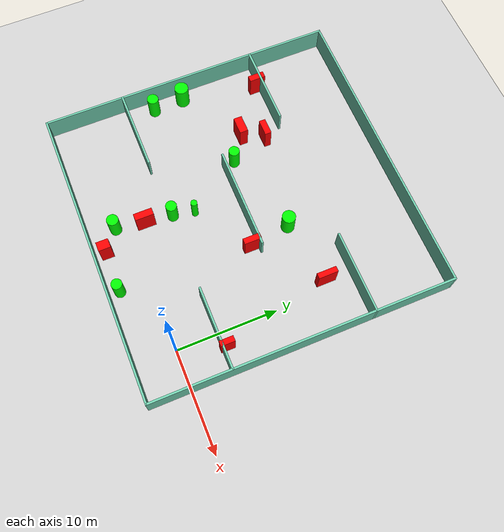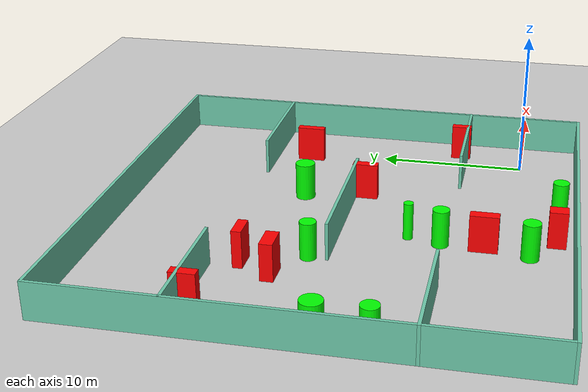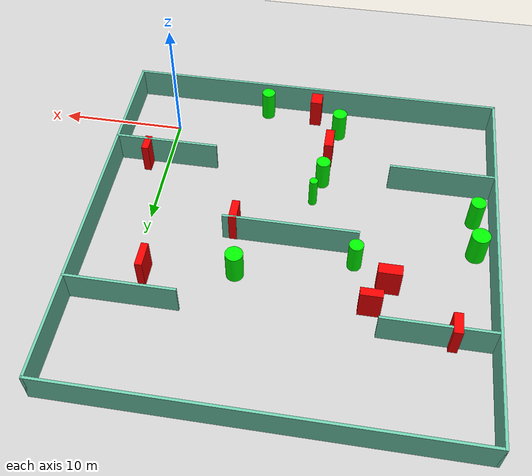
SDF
<sdf version="1.7">
 <world name="default">
  <light name="sun" type="directional">
   <pose>0 0 10 0 -0 0</pose>
   <diffuse>0.8 0.8 0.8 1</diffuse>
   <specular>0.2 0.2 0.2 1</specular>
   <attenuation>
    <range>1000</range>
    <constant>0.9</constant>
    <linear>0.01</linear>
    <quadratic>0.001</quadratic>
   </attenuation>
   <direction>-0.5 0.1 -0.9</direction>
   <spot><inner_angle>0</inner_angle><outer_angle>0</outer_angle><falloff>0</falloff></spot>
  </light>
  <model name="ground_plane">
   <static>1</static>
   <link name="link">
    <collision name="collision">
     <geometry><plane><normal>0 0 1</normal><size>100 100</size></plane></geometry>
     <surface>
      <contact><collide_bitmask>65535</collide_bitmask></contact>
      <friction><ode><mu>100</mu><mu2>50</mu2></ode></friction>
     </surface>
    </collision>
    <visual name="visual">
     <cast_shadows>0</cast_shadows>
     <geometry><plane><normal>0 0 1</normal><size>100 100</size></plane></geometry>
     <material>
      <script><uri>file://media/materials/scripts/gazebo.material</uri><name>Gazebo/Grey</name></script>
     </material>
    </visual>
   </link>
  </model>
  <gravity>0 0 -9.8</gravity>
  <magnetic_field>6e-06 2.3e-05 -4.2e-05</magnetic_field>
  <atmosphere type="adiabatic"/>
  <physics type="ode">
   <max_step_size>0.001</max_step_size>
   <real_time_factor>1</real_time_factor>
   <real_time_update_rate>1000</real_time_update_rate>
  </physics>
  <scene><ambient>0.4 0.4 0.4 1</ambient><background>0.7 0.7 0.7 1</background><shadows>1</shadows></scene>
  <spherical_coordinates>
   <surface_model>EARTH_WGS84</surface_model>
   <latitude_deg>0</latitude_deg>
   <longitude_deg>0</longitude_deg>
   <elevation>0</elevation>
   <heading_deg>0</heading_deg>
  </spherical_coordinates>
  <model name="my_base_walls">
   <link name="Wall_10">
    <collision name="Wall_10_Collision">
     <geometry><box><size>8.2 0.2 2.5</size></box></geometry>
     <pose>0 0 1.25 0 -0 0</pose>
    </collision>
    <visual name="Wall_10_Visual">
     <pose>0 0 1.25 0 -0 0</pose>
     <geometry><box><size>8.2 0.2 2.5</size></box></geometry>
     <material>
      <script><uri>file://media/materials/scripts/gazebo.material</uri><name>Gazebo/Grey</name></script>
      <ambient>0.435294 0.796078 0.67451 1</ambient>
     </material>
     <meta><layer>0</layer></meta>
    </visual>
    <pose>-11 -7 0 0 -0 0</pose>
   </link>
   <link name="Wall_12">
    <collision name="Wall_12_Collision">
     <geometry><box><size>8.2 0.2 2.5</size></box></geometry>
     <pose>0 0 1.25 0 -0 0</pose>
    </collision>
    <visual name="Wall_12_Visual">
     <pose>0 0 1.25 0 -0 0</pose>
     <geometry><box><size>8.2 0.2 2.5</size></box></geometry>
     <material>
      <script><uri>file://media/materials/scripts/gazebo.material</uri><name>Gazebo/Grey</name></script>
      <ambient>0.435294 0.796078 0.67451 1</ambient>
     </material>
     <meta><layer>0</layer></meta>
    </visual>
    <pose>-11 7 0 0 -0 0</pose>
   </link>
   <link name="Wall_14">
    <collision name="Wall_14_Collision">
     <geometry><box><size>8.2 0.2 2.5</size></box></geometry>
     <pose>0 0 1.25 0 -0 0</pose>
    </collision>
    <visual name="Wall_14_Visual">
     <pose>0 0 1.25 0 -0 0</pose>
     <geometry><box><size>8.2 0.2 2.5</size></box></geometry>
     <material>
      <script><uri>file://media/materials/scripts/gazebo.material</uri><name>Gazebo/Grey</name></script>
      <ambient>0.435294 0.796078 0.67451 1</ambient>
     </material>
     <meta><layer>0</layer></meta>
    </visual>
    <pose>11 7 0 0 -0 3.14159</pose>
   </link>
   <link name="Wall_16">
    <collision name="Wall_16_Collision">
     <geometry><box><size>10.2 0.2 2.5</size></box></geometry>
     <pose>0 0 1.25 0 -0 0</pose>
    </collision>
    <visual name="Wall_16_Visual">
     <pose>0 0 1.25 0 -0 0</pose>
     <geometry><box><size>10.2 0.2 2.5</size></box></geometry>
     <material>
      <script><uri>file://media/materials/scripts/gazebo.material</uri><name>Gazebo/Grey</name></script>
      <ambient>0.435294 0.796078 0.67451 1</ambient>
     </material>
     <meta><layer>0</layer></meta>
    </visual>
    <pose>0 0 0 0 -0 3.14159</pose>
   </link>
   <link name="Wall_2">
    <collision name="Wall_2_Collision">
     <geometry><box><size>30.2 0.2 2.5</size></box></geometry>
     <pose>0 0 1.25 0 -0 0</pose>
    </collision>
    <visual name="Wall_2_Visual">
     <pose>0 0 1.25 0 -0 0</pose>
     <geometry><box><size>30.2 0.2 2.5</size></box></geometry>
     <material>
      <script><uri>file://media/materials/scripts/gazebo.material</uri><name>Gazebo/Grey</name></script>
      <ambient>0.435294 0.796078 0.67451 1</ambient>
     </material>
     <meta><layer>0</layer></meta>
    </visual>
    <pose>0 -15 0 0 -0 3.14159</pose>
   </link>
   <link name="Wall_3">
    <collision name="Wall_3_Collision">
     <geometry><box><size>30.2 0.2 2.5</size></box></geometry>
     <pose>0 0 1.25 0 -0 0</pose>
    </collision>
    <visual name="Wall_3_Visual">
     <pose>0 0 1.25 0 -0 0</pose>
     <geometry><box><size>30.2 0.2 2.5</size></box></geometry>
     <material>
      <script><uri>file://media/materials/scripts/gazebo.material</uri><name>Gazebo/Grey</name></script>
      <ambient>0.435294 0.796078 0.67451 1</ambient>
     </material>
     <meta><layer>0</layer></meta>
    </visual>
    <pose>-15 0 0 0 -0 1.5708</pose>
   </link>
   <link name="Wall_4">
    <collision name="Wall_4_Collision">
     <geometry><box><size>30.2 0.2 2.5</size></box></geometry>
     <pose>0 0 1.25 0 -0 0</pose>
    </collision>
    <visual name="Wall_4_Visual">
     <pose>0 0 1.25 0 -0 0</pose>
     <geometry><box><size>30.2 0.2 2.5</size></box></geometry>
     <material>
      <script><uri>file://media/materials/scripts/gazebo.material</uri><name>Gazebo/Grey</name></script>
      <ambient>0.435294 0.796078 0.67451 1</ambient>
     </material>
     <meta><layer>0</layer></meta>
    </visual>
    <pose>0 15 0 0 -0 0</pose>
   </link>
   <link name="Wall_6">
    <collision name="Wall_6_Collision">
     <geometry><box><size>30.2 0.2 2.5</size></box></geometry>
     <pose>0 0 1.25 0 -0 0</pose>
    </collision>
    <visual name="Wall_6_Visual">
     <pose>0 0 1.25 0 -0 0</pose>
     <geometry><box><size>30.2 0.2 2.5</size></box></geometry>
     <material>
      <script><uri>file://media/materials/scripts/gazebo.material</uri><name>Gazebo/Grey</name></script>
      <ambient>0.435294 0.796078 0.67451 1</ambient>
     </material>
     <meta><layer>0</layer></meta>
    </visual>
    <pose>15 0 0 0 -0 1.5708</pose>
   </link>
   <link name="Wall_8">
    <collision name="Wall_8_Collision">
     <geometry><box><size>8.2 0.2 2.5</size></box></geometry>
     <pose>0 0 1.25 0 -0 0</pose>
    </collision>
    <visual name="Wall_8_Visual">
     <pose>0 0 1.25 0 -0 0</pose>
     <geometry><box><size>8.2 0.2 2.5</size></box></geometry>
     <material>
      <script><uri>file://media/materials/scripts/gazebo.material</uri><name>Gazebo/Grey</name></script>
      <ambient>0.435294 0.796078 0.67451 1</ambient>
     </material>
     <meta><layer>0</layer></meta>
    </visual>
    <pose>11 -7 0 0 -0 3.14159</pose>
   </link>
   <static>1</static>
   <pose>-11 11 0 0 -0 0</pose>
  </model>
  <model name="cylinder1">
   <static>1</static>
   <link name="link">
    <inertial>
     <mass>1</mass>
     <inertia><ixx>0.5</ixx><ixy>0</ixy><ixz>0</ixz><iyy>0.5</iyy><iyz>0</iyz><izz>1</izz></inertia>
    </inertial>
    <collision name="collision">
     <geometry><cylinder><radius>0.6606868213116475</radius><length>2.5</length></cylinder></geometry>
    </collision>
    <visual name="visual">
     <geometry><cylinder><radius>0.6606868213116475</radius><length>2.5</length></cylinder></geometry>
     <material>
      <ambient>0 1 0 1</ambient>
      <diffuse>0 1 0 1</diffuse>
      <specular>0.1 0.1 0.1 1</specular>
      <emissive>0 0 0 0</emissive>
     </material>
    </visual>
   </link>
   <pose>-7.432838563034391 14.364812626035615 1.25 0 0 0</pose>
  </model>
  <model name="cylinder2">
   <static>1</static>
   <link name="link">
    <inertial>
     <mass>1</mass>
     <inertia><ixx>0.5</ixx><ixy>0</ixy><ixz>0</ixz><iyy>0.5</iyy><iyz>0</iyz><izz>1</izz></inertia>
    </inertial>
    <collision name="collision">
     <geometry><cylinder><radius>0.5490441402704389</radius><length>2.5</length></cylinder></geometry>
    </collision>
    <visual name="visual">
     <geometry><cylinder><radius>0.5490441402704389</radius><length>2.5</length></cylinder></geometry>
     <material>
      <ambient>0 1 0 1</ambient>
      <diffuse>0 1 0 1</diffuse>
      <specular>0.1 0.1 0.1 1</specular>
      <emissive>0 0 0 0</emissive>
     </material>
    </visual>
   </link>
   <pose>-12.726470066452562 4.397351038210692 1.25 0 0 0</pose>
  </model>
  <model name="cylinder3">
   <static>1</static>
   <link name="link">
    <inertial>
     <mass>1</mass>
     <inertia><ixx>0.5</ixx><ixy>0</ixy><ixz>0</ixz><iyy>0.5</iyy><iyz>0</iyz><izz>1</izz></inertia>
    </inertial>
    <collision name="collision">
     <geometry><cylinder><radius>0.5724690473700622</radius><length>2.5</length></cylinder></geometry>
    </collision>
    <visual name="visual">
     <geometry><cylinder><radius>0.5724690473700622</radius><length>2.5</length></cylinder></geometry>
     <material>
      <ambient>0 1 0 1</ambient>
      <diffuse>0 1 0 1</diffuse>
      <specular>0.1 0.1 0.1 1</specular>
      <emissive>0 0 0 0</emissive>
     </material>
    </visual>
   </link>
   <pose>-24.668531466031858 6.782006625549311 1.25 0 0 0</pose>
  </model>
  <model name="cylinder4">
   <static>1</static>
   <link name="link">
    <inertial>
     <mass>1</mass>
     <inertia><ixx>0.5</ixx><ixy>0</ixy><ixz>0</ixz><iyy>0.5</iyy><iyz>0</iyz><izz>1</izz></inertia>
    </inertial>
    <collision name="collision">
     <geometry><cylinder><radius>0.5761477287074315</radius><length>2.5</length></cylinder></geometry>
    </collision>
    <visual name="visual">
     <geometry><cylinder><radius>0.5761477287074315</radius><length>2.5</length></cylinder></geometry>
     <material>
      <ambient>0 1 0 1</ambient>
      <diffuse>0 1 0 1</diffuse>
      <specular>0.1 0.1 0.1 1</specular>
      <emissive>0 0 0 0</emissive>
     </material>
    </visual>
   </link>
   <pose>-13.464070578765025 -1.250469651002196 1.25 0 0 0</pose>
  </model>
  <model name="cylinder5">
   <static>1</static>
   <link name="link">
    <inertial>
     <mass>1</mass>
     <inertia><ixx>0.5</ixx><ixy>0</ixy><ixz>0</ixz><iyy>0.5</iyy><iyz>0</iyz><izz>1</izz></inertia>
    </inertial>
    <collision name="collision">
     <geometry><cylinder><radius>0.6979402982097782</radius><length>2.5</length></cylinder></geometry>
    </collision>
    <visual name="visual">
     <geometry><cylinder><radius>0.6979402982097782</radius><length>2.5</length></cylinder></geometry>
     <material>
      <ambient>0 1 0 1</ambient>
      <diffuse>0 1 0 1</diffuse>
      <specular>0.1 0.1 0.1 1</specular>
      <emissive>0 0 0 0</emissive>
     </material>
    </visual>
   </link>
   <pose>-24.80210332154989 9.935647357279482 1.25 0 0 0</pose>
  </model>
  <model name="cylinder6">
   <static>1</static>
   <link name="link">
    <inertial>
     <mass>1</mass>
     <inertia><ixx>0.5</ixx><ixy>0</ixy><ixz>0</ixz><iyy>0.5</iyy><iyz>0</iyz><izz>1</izz></inertia>
    </inertial>
    <collision name="collision">
     <geometry><cylinder><radius>0.5347457768836601</radius><length>2.5</length></cylinder></geometry>
    </collision>
    <visual name="visual">
     <geometry><cylinder><radius>0.5347457768836601</radius><length>2.5</length></cylinder></geometry>
     <material>
      <ambient>0 1 0 1</ambient>
      <diffuse>0 1 0 1</diffuse>
      <specular>0.1 0.1 0.1 1</specular>
      <emissive>0 0 0 0</emissive>
     </material>
    </visual>
   </link>
   <pose>-15.96122002377797 12.197150071016738 1.25 0 0 0</pose>
  </model>
  <model name="cylinder7">
   <static>1</static>
   <link name="link">
    <inertial>
     <mass>1</mass>
     <inertia><ixx>0.5</ixx><ixy>0</ixy><ixz>0</ixz><iyy>0.5</iyy><iyz>0</iyz><izz>1</izz></inertia>
    </inertial>
    <collision name="collision">
     <geometry><cylinder><radius>0.5324796827931049</radius><length>2.5</length></cylinder></geometry>
    </collision>
    <visual name="visual">
     <geometry><cylinder><radius>0.5324796827931049</radius><length>2.5</length></cylinder></geometry>
     <material>
      <ambient>0 1 0 1</ambient>
      <diffuse>0 1 0 1</diffuse>
      <specular>0.1 0.1 0.1 1</specular>
      <emissive>0 0 0 0</emissive>
     </material>
    </visual>
   </link>
   <pose>-7.242783766477006 -2.9137246164040924 1.25 0 0 0</pose>
  </model>
  <model name="cylinder8">
   <static>1</static>
   <link name="link">
    <inertial>
     <mass>1</mass>
     <inertia><ixx>0.5</ixx><ixy>0</ixy><ixz>0</ixz><iyy>0.5</iyy><iyz>0</iyz><izz>1</izz></inertia>
    </inertial>
    <collision name="collision">
     <geometry><cylinder><radius>0.32028904976915845</radius><length>2.5</length></cylinder></geometry>
    </collision>
    <visual name="visual">
     <geometry><cylinder><radius>0.32028904976915845</radius><length>2.5</length></cylinder></geometry>
     <material>
      <ambient>0 1 0 1</ambient>
      <diffuse>0 1 0 1</diffuse>
      <specular>0.1 0.1 0.1 1</specular>
      <emissive>0 0 0 0</emissive>
     </material>
    </visual>
   </link>
   <pose>-12.203158800782377 6.526735720483179 1.25 0 0 0</pose>
  </model>
  <model name="box1">
   <static>1</static>
   <link name="link">
    <inertial>
     <mass>1</mass>
     <inertia><ixx>0.083</ixx><ixy>0</ixy><ixz>0</ixz><iyy>0.083</iyy><iyz>0</iyz><izz>0.083</izz></inertia>
    </inertial>
    <collision name="collision">
     <geometry><box><size>0.6443134845106616 1.624540447781813 2.5</size></box></geometry>
    </collision>
    <visual name="visual">
     <geometry><box><size>0.6443134845106616 1.624540447781813 2.5</size></box></geometry>
     <material>
      <ambient>1 0 0 1</ambient>
      <diffuse>1 0 0 1</diffuse>
      <specular>0.1 0.1 0.1 1</specular>
      <emissive>0 0 0 0</emissive>
     </material>
    </visual>
    <sensor name="my_contact" type="contact">
     <contact><collision>box_collision</collision><topic>__default_topic__</topic></contact>
    </sensor>
   </link>
   <pose>-23.186920983085688 17.634204457108066 1.25 0 0 0</pose>
  </model>
  <model name="box2">
   <static>1</static>
   <link name="link">
    <inertial>
     <mass>1</mass>
     <inertia><ixx>0.083</ixx><ixy>0</ixy><ixz>0</ixz><iyy>0.083</iyy><iyz>0</iyz><izz>0.083</izz></inertia>
    </inertial>
    <collision name="collision">
     <geometry><box><size>0.5878701420278519 1.7063093712309831 2.5</size></box></geometry>
    </collision>
    <visual name="visual">
     <geometry><box><size>0.5878701420278519 1.7063093712309831 2.5</size></box></geometry>
     <material>
      <ambient>1 0 0 1</ambient>
      <diffuse>1 0 0 1</diffuse>
      <specular>0.1 0.1 0.1 1</specular>
      <emissive>0 0 0 0</emissive>
     </material>
    </visual>
    <sensor name="my_contact" type="contact">
     <contact><collision>box_collision</collision><topic>__default_topic__</topic></contact>
    </sensor>
   </link>
   <pose>-6.688576005354442 10.28122527584738 1.25 0 0 0</pose>
  </model>
  <model name="box3">
   <static>1</static>
   <link name="link">
    <inertial>
     <mass>1</mass>
     <inertia><ixx>0.083</ixx><ixy>0</ixy><ixz>0</ixz><iyy>0.083</iyy><iyz>0</iyz><izz>0.083</izz></inertia>
    </inertial>
    <collision name="collision">
     <geometry><box><size>1.6291039078946161 0.6459046210846908 2.5</size></box></geometry>
    </collision>
    <visual name="visual">
     <geometry><box><size>1.6291039078946161 0.6459046210846908 2.5</size></box></geometry>
     <material>
      <ambient>1 0 0 1</ambient>
      <diffuse>1 0 0 1</diffuse>
      <specular>0.1 0.1 0.1 1</specular>
      <emissive>0 0 0 0</emissive>
     </material>
    </visual>
    <sensor name="my_contact" type="contact">
     <contact><collision>box_collision</collision><topic>__default_topic__</topic></contact>
    </sensor>
   </link>
   <pose>-17.331381100303105 16.10854259646225 1.25 0 0 0</pose>
  </model>
  <model name="box4">
   <static>1</static>
   <link name="link">
    <inertial>
     <mass>1</mass>
     <inertia><ixx>0.083</ixx><ixy>0</ixy><ixz>0</ixz><iyy>0.083</iyy><iyz>0</iyz><izz>0.083</izz></inertia>
    </inertial>
    <collision name="collision">
     <geometry><box><size>0.7008140568885585 1.8499490623192971 2.5</size></box></geometry>
    </collision>
    <visual name="visual">
     <geometry><box><size>0.7008140568885585 1.8499490623192971 2.5</size></box></geometry>
     <material>
      <ambient>1 0 0 1</ambient>
      <diffuse>1 0 0 1</diffuse>
      <specular>0.1 0.1 0.1 1</specular>
      <emissive>0 0 0 0</emissive>
     </material>
    </visual>
    <sensor name="my_contact" type="contact">
     <contact><collision>box_collision</collision><topic>__default_topic__</topic></contact>
    </sensor>
   </link>
   <pose>-12.903402324431731 1.6687450307772078 1.25 0 0 0</pose>
  </model>
  <model name="box5">
   <static>1</static>
   <link name="link">
    <inertial>
     <mass>1</mass>
     <inertia><ixx>0.083</ixx><ixy>0</ixy><ixz>0</ixz><iyy>0.083</iyy><iyz>0</iyz><izz>0.083</izz></inertia>
    </inertial>
    <collision name="collision">
     <geometry><box><size>0.5394743837124704 1.9428874292314942 2.5</size></box></geometry>
    </collision>
    <visual name="visual">
     <geometry><box><size>0.5394743837124704 1.9428874292314942 2.5</size></box></geometry>
     <material>
      <ambient>1 0 0 1</ambient>
      <diffuse>1 0 0 1</diffuse>
      <specular>0.1 0.1 0.1 1</specular>
      <emissive>0 0 0 0</emissive>
     </material>
    </visual>
    <sensor name="my_contact" type="contact">
     <contact><collision>box_collision</collision><topic>__default_topic__</topic></contact>
    </sensor>
   </link>
   <pose>-0.9582406088875537 15.406648781475532 1.25 0 0 0</pose>
  </model>
  <model name="box6">
   <static>1</static>
   <link name="link">
    <inertial>
     <mass>1</mass>
     <inertia><ixx>0.083</ixx><ixy>0</ixy><ixz>0</ixz><iyy>0.083</iyy><iyz>0</iyz><izz>0.083</izz></inertia>
    </inertial>
    <collision name="collision">
     <geometry><box><size>0.921743669437842 1.1983954311603653 2.5</size></box></geometry>
    </collision>
    <visual name="visual">
     <geometry><box><size>0.921743669437842 1.1983954311603653 2.5</size></box></geometry>
     <material>
      <ambient>1 0 0 1</ambient>
      <diffuse>1 0 0 1</diffuse>
      <specular>0.1 0.1 0.1 1</specular>
      <emissive>0 0 0 0</emissive>
     </material>
    </visual>
    <sensor name="my_contact" type="contact">
     <contact><collision>box_collision</collision><topic>__default_topic__</topic></contact>
    </sensor>
   </link>
   <pose>-11.36870742019414 -2.845061192610941 1.25 0 0 0</pose>
  </model>
  <model name="box7">
   <static>1</static>
   <link name="link">
    <inertial>
     <mass>1</mass>
     <inertia><ixx>0.083</ixx><ixy>0</ixy><ixz>0</ixz><iyy>0.083</iyy><iyz>0</iyz><izz>0.083</izz></inertia>
    </inertial>
    <collision name="collision">
     <geometry><box><size>1.7341543106161117 0.8420807195598956 2.5</size></box></geometry>
    </collision>
    <visual name="visual">
     <geometry><box><size>1.7341543106161117 0.8420807195598956 2.5</size></box></geometry>
     <material>
      <ambient>1 0 0 1</ambient>
      <diffuse>1 0 0 1</diffuse>
      <specular>0.1 0.1 0.1 1</specular>
      <emissive>0 0 0 0</emissive>
     </material>
    </visual>
    <sensor name="my_contact" type="contact">
     <contact><collision>box_collision</collision><topic>__default_topic__</topic></contact>
    </sensor>
   </link>
   <pose>-18.49661555286373 13.948464032127696 1.25 0 0 0</pose>
  </model>
  <model name="box8">
   <static>1</static>
   <link name="link">
    <inertial>
     <mass>1</mass>
     <inertia><ixx>0.083</ixx><ixy>0</ixy><ixz>0</ixz><iyy>0.083</iyy><iyz>0</iyz><izz>0.083</izz></inertia>
    </inertial>
    <collision name="collision">
     <geometry><box><size>0.5492197199718956 1.3822615551505788 2.5</size></box></geometry>
    </collision>
    <visual name="visual">
     <geometry><box><size>0.5492197199718956 1.3822615551505788 2.5</size></box></geometry>
     <material>
      <ambient>1 0 0 1</ambient>
      <diffuse>1 0 0 1</diffuse>
      <specular>0.1 0.1 0.1 1</specular>
      <emissive>0 0 0 0</emissive>
     </material>
    </visual>
    <sensor name="my_contact" type="contact">
     <contact><collision>box_collision</collision><topic>__default_topic__</topic></contact>
    </sensor>
   </link>
   <pose>1.4991355931763835 4.464695809651264 1.25 0 0 0</pose>
  </model>
 </world>
</sdf>
